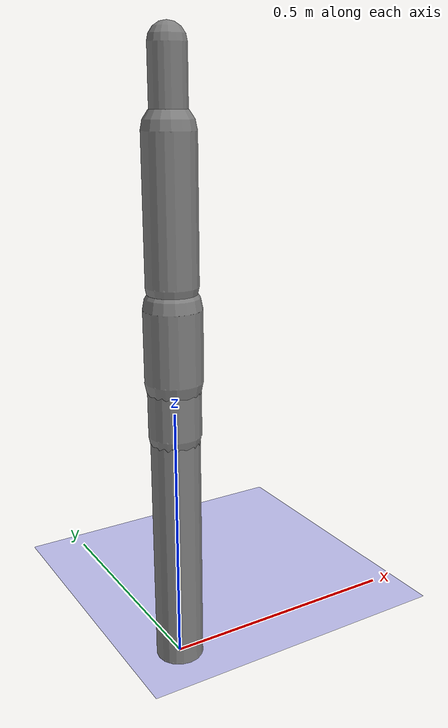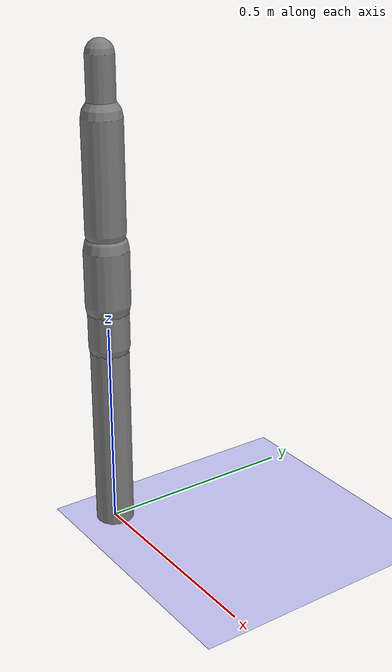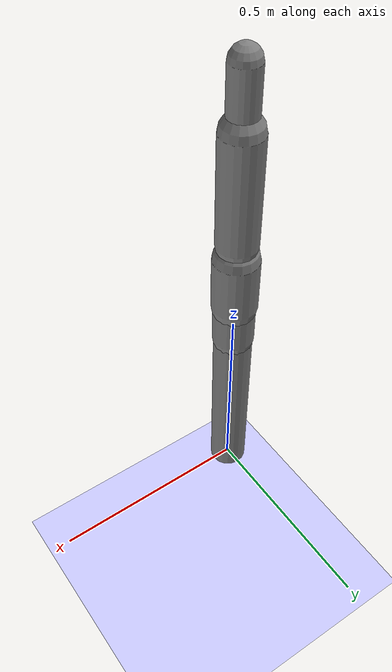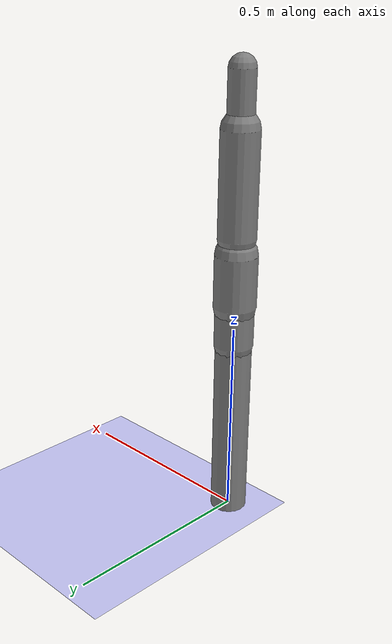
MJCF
<?xml version='1.0' encoding='UTF-8'?>
<mujoco model="robot_model">
  <worldbody>
    <light name="light" pos="0 -3 10" dir="0 0.5 -1" diffuse=".8 .8 .8" specular="0.1 0.1 0.1"/>
    <geom name="floor" type="plane" size="10.0 10.0 0.1" pos="0 0 0" rgba="0.8 0.8 1 1" contype="2" conaffinity="1"/>
    <body name="limb0" pos="0 0 0">
      <geom type="capsule" fromto="0 0 0 0 0 0.5157616589957242" size="0.046120873165840987" density="975.0807565385417" contype="1" conaffinity="2"/>
      <site type="sphere" size="0.01" name="limb0_site0" pos="0 0 0.2975468431009565"/>
      <site type="sphere" size="0.01" name="limb0_site1" pos="0 0 0.4856959290625797"/>
      <freejoint name="limb0_root"/>
      <body name="limb1" pos="0 0 0.2975468431009565">
        <geom type="capsule" fromto="0 0 0 0 0 0.2639757366326131" size="0.03303782304059255" density="616.6153958948047" contype="1" conaffinity="2"/>
        <site type="sphere" size="0.01" name="limb1_site0" pos="0 0 0.16469519644951955"/>
        <site type="sphere" size="0.01" name="limb1_site1" pos="0 0 0.10105994540977413"/>
        <site type="sphere" size="0.01" name="limb1_site2" pos="0 0 0.22399130455694416"/>
        <body name="limb2" pos="0 0 0.16469519644951955">
          <geom type="capsule" fromto="0 0 0 0 0 0.23785756650714102" size="0.049138871714439904" density="645.8772761445443" contype="1" conaffinity="2"/>
          <site type="sphere" size="0.01" name="limb2_site0" pos="0 0 0.10229628708624505"/>
          <body name="limb3" pos="0 0 0.10229628708624505">
            <geom type="capsule" fromto="0 0 0 0 0 0.1320734913801986" size="0.05340957392047939" density="1133.4821049602715" contype="1" conaffinity="2"/>
            <joint name="joint_limb2_limb3_0" type="hinge" axis="0 1 0" range="-69.44632972357735 69.44632972357735" damping="5.0"/>
          </body>
          <joint name="joint_limb1_limb2_0" type="hinge" axis="0 1 0" range="-79.19027832141104 79.19027832141104" damping="5.0"/>
        </body>
        <body name="limb4" pos="0 0 0.10105994540977413">
          <geom type="capsule" fromto="0 0 0 0 0 0.3449366956007403" size="0.04182995516077146" density="888.638751137447" contype="1" conaffinity="2"/>
          <site type="sphere" size="0.01" name="limb4_site0" pos="0 0 0.34476469369601037"/>
          <body name="limb5" pos="0 0 0.34476469369601037">
            <geom type="capsule" fromto="0 0 0 0 0 0.38689637571819735" size="0.03296585503229504" density="787.6117064878987" contype="1" conaffinity="2"/>
            <joint name="joint_limb4_limb5_0" type="hinge" axis="0 1 0" range="-97.60316524447805 97.60316524447805" damping="5.0"/>
          </body>
          <joint name="joint_limb1_limb4_0" type="hinge" axis="0 1 0" range="-81.36051586401729 81.36051586401729" damping="5.0"/>
        </body>
        <body name="limb6" pos="0 0 0.22399130455694416">
          <geom type="capsule" fromto="0 0 0 0 0 0.4886525017141072" size="0.02730849030649112" density="1118.1587480940386" contype="1" conaffinity="2"/>
          <site type="sphere" size="0.01" name="limb6_site0" pos="0 0 0.2148602362279738"/>
          <site type="sphere" size="0.01" name="limb6_site1" pos="0 0 0.2502629485534305"/>
          <body name="limb7" pos="0 0 0.2148602362279738">
            <geom type="capsule" fromto="0 0 0 0 0 0.2587901804528069" size="0.047493742864135685" density="1200.0" contype="1" conaffinity="2"/>
            <joint name="joint_limb6_limb7_0" type="hinge" axis="0 0 1" range="-90.68447688642209 90.68447688642209" damping="5.0"/>
          </body>
          <body name="limb8" pos="0 0 0.2502629485534305">
            <geom type="capsule" fromto="0 0 0 0 0 0.1797215636428" size="0.026091798513952557" density="745.8119714770129" contype="1" conaffinity="2"/>
            <joint name="joint_limb6_limb8_0" type="hinge" axis="1 0 0" range="-42.15190616583611 42.15190616583611" damping="5.0"/>
          </body>
          <joint name="joint_limb1_limb6_0" type="hinge" axis="0 1 0" range="-80.38696577407528 80.38696577407528" damping="5.0"/>
        </body>
        <joint name="joint_limb0_limb1_0" type="hinge" axis="0 1 0" range="-80.93464502128651 80.93464502128651" damping="5.0"/>
      </body>
      <body name="limb9" pos="0 0 0.4856959290625797">
        <geom type="capsule" fromto="0 0 0 0 0 0.12459660118477343" size="0.048030699364997174" density="1200.0" contype="1" conaffinity="2"/>
        <joint name="joint_limb0_limb9_0" type="hinge" axis="0 1 0" range="-46.186401585393725 46.186401585393725" damping="5.0"/>
      </body>
    </body>
  </worldbody>
  <actuator>
    <position name="position_actuator_joint_limb0_limb1_0" joint="joint_limb0_limb1_0" gear="0.9284005325474602" inheritrange="1" kp="10.0"/>
    <position name="position_actuator_joint_limb1_limb2_0" joint="joint_limb1_limb2_0" gear="1.0104857860709995" inheritrange="1" kp="10.0"/>
    <position name="position_actuator_joint_limb2_limb3_0" joint="joint_limb2_limb3_0" gear="0.9276080822771746" inheritrange="1" kp="10.0"/>
    <position name="position_actuator_joint_limb1_limb4_0" joint="joint_limb1_limb4_0" gear="2.0" inheritrange="1" kp="10.0"/>
    <position name="position_actuator_joint_limb4_limb5_0" joint="joint_limb4_limb5_0" gear="1.7459471619076385" inheritrange="1" kp="10.0"/>
    <position name="position_actuator_joint_limb1_limb6_0" joint="joint_limb1_limb6_0" gear="1.272740550353963" inheritrange="1" kp="10.0"/>
    <position name="position_actuator_joint_limb6_limb7_0" joint="joint_limb6_limb7_0" gear="1.2021518308108163" inheritrange="1" kp="10.0"/>
    <position name="position_actuator_joint_limb6_limb8_0" joint="joint_limb6_limb8_0" gear="1.5515760021784972" inheritrange="1" kp="10.0"/>
    <position name="position_actuator_joint_limb0_limb9_0" joint="joint_limb0_limb9_0" gear="0.5181521235082891" inheritrange="1" kp="10.0"/>
  </actuator>
</mujoco>
